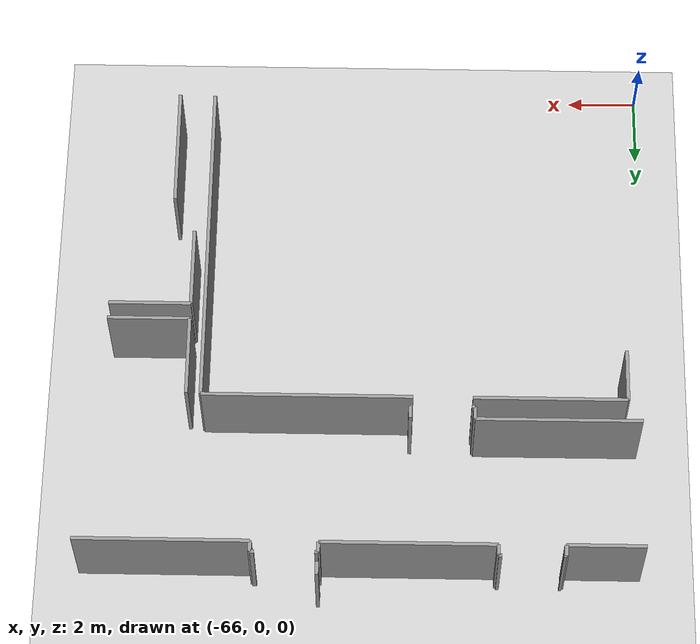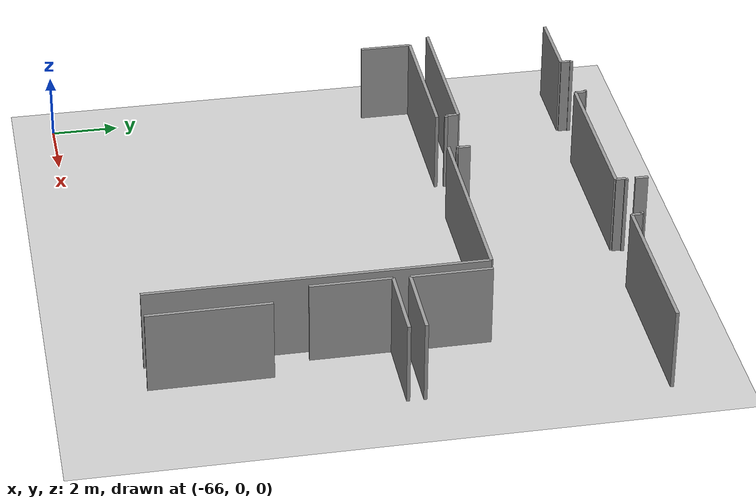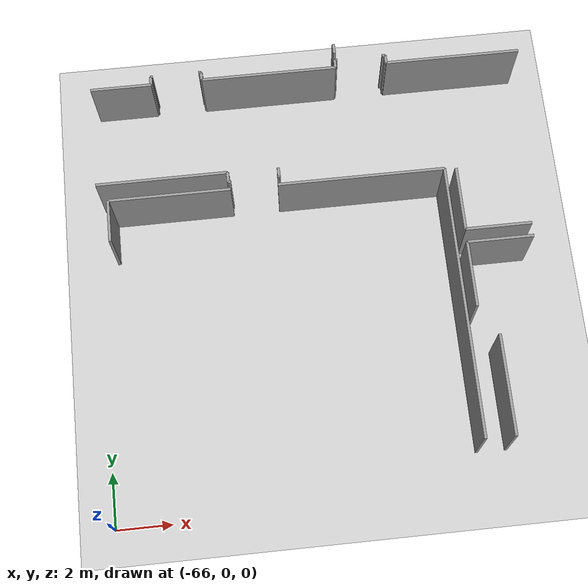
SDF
<sdf version="1.6">
 <world name="default">
  <model name="ground_plane">
   <static>1</static>
   <link name="link">
    <collision name="collision">
     <geometry><plane><normal>0 0 1</normal><size>100 100</size></plane></geometry>
     <surface><friction><ode><mu>100</mu><mu2>50</mu2></ode></friction></surface>
    </collision>
    <visual name="visual">
     <cast_shadows>0</cast_shadows>
     <geometry><plane><normal>0 0 1</normal><size>100 100</size></plane></geometry>
     <material>
      <script><uri>file://media/materials/scripts/gazebo.material</uri><name>Gazebo/Grey</name></script>
     </material>
    </visual>
   </link>
  </model>
  <model name="0510032192_A_40_1_103">
   <static>1</static>
   <link name="Wall_10">
    <collision name="Wall_10_Collision">
     <geometry><box><size>0.379861014064 0.1 2.5</size></box></geometry>
     <pose>0.189930507032 0 1.25 0 0 0</pose>
    </collision>
    <visual name="Wall_10_Visual">
     <pose>0.189930507032 0 1.25 0 0 0</pose>
     <geometry><box><size>0.379861014064 0.1 2.5</size></box></geometry>
     <material>
      <script><uri>file://media/materials/scripts/gazebo.material</uri><name>Gazebo/Grey</name></script>
      <ambient>1 1 1 1</ambient>
     </material>
    </visual>
    <pose>10.8453495611 -10.4052697775 0 0 0 1.57079632679</pose>
   </link>
   <link name="Wall_56">
    <collision name="Wall_56_Collision">
     <geometry><box><size>2.22326680472 0.1 2.5</size></box></geometry>
     <pose>1.11163340236 0 1.25 0 0 0</pose>
    </collision>
    <visual name="Wall_56_Visual">
     <pose>1.11163340236 0 1.25 0 0 0</pose>
     <geometry><box><size>2.22326680472 0.1 2.5</size></box></geometry>
     <material>
      <script><uri>file://media/materials/scripts/gazebo.material</uri><name>Gazebo/Grey</name></script>
      <ambient>1 1 1 1</ambient>
     </material>
    </visual>
    <pose>1.77619961125 -10.9997077992 0 0 0 0.0</pose>
   </link>
   <link name="Wall_57">
    <collision name="Wall_57_Collision">
     <geometry><box><size>0.322056077141 0.1 2.5</size></box></geometry>
     <pose>0.161028038571 0 1.25 0 0 0</pose>
    </collision>
    <visual name="Wall_57_Visual">
     <pose>0.161028038571 0 1.25 0 0 0</pose>
     <geometry><box><size>0.322056077141 0.1 2.5</size></box></geometry>
     <material>
      <script><uri>file://media/materials/scripts/gazebo.material</uri><name>Gazebo/Grey</name></script>
      <ambient>1 1 1 1</ambient>
     </material>
    </visual>
    <pose>3.99946641597 -10.9997077992 0 0 0 1.57079632679</pose>
   </link>
   <link name="Wall_58">
    <collision name="Wall_58_Collision">
     <geometry><box><size>0.0769885533521 0.1 2.5</size></box></geometry>
     <pose>0.038494276676 0 1.25 0 0 0</pose>
    </collision>
    <visual name="Wall_58_Visual">
     <pose>0.038494276676 0 1.25 0 0 0</pose>
     <geometry><box><size>0.0769885533521 0.1 2.5</size></box></geometry>
     <material>
      <script><uri>file://media/materials/scripts/gazebo.material</uri><name>Gazebo/Grey</name></script>
      <ambient>1 1 1 1</ambient>
     </material>
    </visual>
    <pose>3.99946641597 -10.6776517221 0 0 0 0.0</pose>
   </link>
   <link name="Wall_59">
    <collision name="Wall_59_Collision">
     <geometry><box><size>0.0919797238067 0.1 2.5</size></box></geometry>
     <pose>0.0459898619034 0 1.25 0 0 0</pose>
    </collision>
    <visual name="Wall_59_Visual">
     <pose>0.0459898619034 0 1.25 0 0 0</pose>
     <geometry><box><size>0.0919797238067 0.1 2.5</size></box></geometry>
     <material>
      <script><uri>file://media/materials/scripts/gazebo.material</uri><name>Gazebo/Grey</name></script>
      <ambient>1 1 1 1</ambient>
     </material>
    </visual>
    <pose>5.77007609925 -10.6776517221 0 0 0 0.0</pose>
   </link>
   <link name="Wall_60">
    <collision name="Wall_60_Collision">
     <geometry><box><size>0.310241002122 0.1 2.5</size></box></geometry>
     <pose>0.155120501061 0 1.25 0 0 0</pose>
    </collision>
    <visual name="Wall_60_Visual">
     <pose>0.155120501061 0 1.25 0 0 0</pose>
     <geometry><box><size>0.310241002122 0.1 2.5</size></box></geometry>
     <material>
      <script><uri>file://media/materials/scripts/gazebo.material</uri><name>Gazebo/Grey</name></script>
      <ambient>1 1 1 1</ambient>
     </material>
    </visual>
    <pose>5.86205582305 -10.6776517221 0 0 0 -1.57079632679</pose>
   </link>
   <link name="Wall_61">
    <collision name="Wall_61_Collision">
     <geometry><box><size>4.95534409818 0.1 2.5</size></box></geometry>
     <pose>2.47767204909 0 1.25 0 0 0</pose>
    </collision>
    <visual name="Wall_61_Visual">
     <pose>2.47767204909 0 1.25 0 0 0</pose>
     <geometry><box><size>4.95534409818 0.1 2.5</size></box></geometry>
     <material>
      <script><uri>file://media/materials/scripts/gazebo.material</uri><name>Gazebo/Grey</name></script>
      <ambient>1 1 1 1</ambient>
     </material>
    </visual>
    <pose>5.86205582305 -10.9878927242 0 0 0 0.0</pose>
   </link>
   <link name="Wall_62">
    <collision name="Wall_62_Collision">
     <geometry><box><size>0.306429687599 0.1 2.5</size></box></geometry>
     <pose>0.1532148438 0 1.25 0 0 0</pose>
    </collision>
    <visual name="Wall_62_Visual">
     <pose>0.1532148438 0 1.25 0 0 0</pose>
     <geometry><box><size>0.306429687599 0.1 2.5</size></box></geometry>
     <material>
      <script><uri>file://media/materials/scripts/gazebo.material</uri><name>Gazebo/Grey</name></script>
      <ambient>1 1 1 1</ambient>
     </material>
    </visual>
    <pose>10.8173999212 -10.9878927242 0 0 0 1.57079632679</pose>
   </link>
   <link name="Wall_63">
    <collision name="Wall_63_Collision">
     <geometry><box><size>0.0993482652167 0.1 2.5</size></box></geometry>
     <pose>0.0496741326083 0 1.25 0 0 0</pose>
    </collision>
    <visual name="Wall_63_Visual">
     <pose>0.0496741326083 0 1.25 0 0 0</pose>
     <geometry><box><size>0.0993482652167 0.1 2.5</size></box></geometry>
     <material>
      <script><uri>file://media/materials/scripts/gazebo.material</uri><name>Gazebo/Grey</name></script>
      <ambient>1 1 1 1</ambient>
     </material>
    </visual>
    <pose>10.8173999212 -10.6814630366 0 0 0 0.0</pose>
   </link>
   <link name="Wall_64">
    <collision name="Wall_64_Collision">
     <geometry><box><size>0.11688031202 0.1 2.5</size></box></geometry>
     <pose>0.0584401560098 0 1.25 0 0 0</pose>
    </collision>
    <visual name="Wall_64_Visual">
     <pose>0.0584401560098 0 1.25 0 0 0</pose>
     <geometry><box><size>0.11688031202 0.1 2.5</size></box></geometry>
     <material>
      <script><uri>file://media/materials/scripts/gazebo.material</uri><name>Gazebo/Grey</name></script>
      <ambient>1 1 1 1</ambient>
     </material>
    </visual>
    <pose>12.5864850787 -10.6814630366 0 0 0 0.0</pose>
   </link>
   <link name="Wall_65">
    <collision name="Wall_65_Collision">
     <geometry><box><size>0.310622133574 0.1 2.5</size></box></geometry>
     <pose>0.155311066787 0 1.25 0 0 0</pose>
    </collision>
    <visual name="Wall_65_Visual">
     <pose>0.155311066787 0 1.25 0 0 0</pose>
     <geometry><box><size>0.310622133574 0.1 2.5</size></box></geometry>
     <material>
      <script><uri>file://media/materials/scripts/gazebo.material</uri><name>Gazebo/Grey</name></script>
      <ambient>1 1 1 1</ambient>
     </material>
    </visual>
    <pose>12.7033653907 -10.6814630366 0 0 0 -1.57079632679</pose>
   </link>
   <link name="Wall_66">
    <collision name="Wall_66_Collision">
     <geometry><box><size>4.93057055378 0.1 2.5</size></box></geometry>
     <pose>2.46528527689 0 1.25 0 0 0</pose>
    </collision>
    <visual name="Wall_66_Visual">
     <pose>2.46528527689 0 1.25 0 0 0</pose>
     <geometry><box><size>4.93057055378 0.1 2.5</size></box></geometry>
     <material>
      <script><uri>file://media/materials/scripts/gazebo.material</uri><name>Gazebo/Grey</name></script>
      <ambient>1 1 1 1</ambient>
     </material>
    </visual>
    <pose>12.7033653907 -10.9920851702 0 0 0 0.0</pose>
   </link>
   <link name="Wall_92">
    <collision name="Wall_92_Collision">
     <geometry><box><size>0.371094990662 0.1 2.5</size></box></geometry>
     <pose>0.185547495331 0 1.25 0 0 0</pose>
    </collision>
    <visual name="Wall_92_Visual">
     <pose>0.185547495331 0 1.25 0 0 0</pose>
     <geometry><box><size>0.371094990662 0.1 2.5</size></box></geometry>
     <material>
      <script><uri>file://media/materials/scripts/gazebo.material</uri><name>Gazebo/Grey</name></script>
      <ambient>1 1 1 1</ambient>
     </material>
    </visual>
    <pose>8.32721405613 -14.7867569525 0 0 0 -1.57079632679</pose>
   </link>
   <link name="Wall_93">
    <collision name="Wall_93_Collision">
     <geometry><box><size>0.0627596458018 0.1 2.5</size></box></geometry>
     <pose>0.0313798229009 0 1.25 0 0 0</pose>
    </collision>
    <visual name="Wall_93_Visual">
     <pose>0.0313798229009 0 1.25 0 0 0</pose>
     <geometry><box><size>0.0627596458018 0.1 2.5</size></box></geometry>
     <material>
      <script><uri>file://media/materials/scripts/gazebo.material</uri><name>Gazebo/Grey</name></script>
      <ambient>1 1 1 1</ambient>
     </material>
    </visual>
    <pose>8.32721405613 -15.1578519431 0 0 0 3.14159265359</pose>
   </link>
   <link name="Wall_94">
    <collision name="Wall_94_Collision">
     <geometry><box><size>0.0932501619809 0.1 2.5</size></box></geometry>
     <pose>0.0466250809904 0 1.25 0 0 0</pose>
    </collision>
    <visual name="Wall_94_Visual">
     <pose>0.0466250809904 0 1.25 0 0 0</pose>
     <geometry><box><size>0.0932501619809 0.1 2.5</size></box></geometry>
     <material>
      <script><uri>file://media/materials/scripts/gazebo.material</uri><name>Gazebo/Grey</name></script>
      <ambient>1 1 1 1</ambient>
     </material>
    </visual>
    <pose>6.59408229898 -15.1578519431 0 0 0 3.14159265359</pose>
   </link>
   <link name="Wall_95">
    <collision name="Wall_95_Collision">
     <geometry><box><size>0.375922655724 0.1 2.5</size></box></geometry>
     <pose>0.187961327862 0 1.25 0 0 0</pose>
    </collision>
    <visual name="Wall_95_Visual">
     <pose>0.187961327862 0 1.25 0 0 0</pose>
     <geometry><box><size>0.375922655724 0.1 2.5</size></box></geometry>
     <material>
      <script><uri>file://media/materials/scripts/gazebo.material</uri><name>Gazebo/Grey</name></script>
      <ambient>1 1 1 1</ambient>
     </material>
    </visual>
    <pose>6.500832137 -15.1578519431 0 0 0 1.57079632679</pose>
   </link>
   <link name="Wall_96">
    <collision name="Wall_96_Collision">
     <geometry><box><size>4.72463867485 0.1 2.5</size></box></geometry>
     <pose>2.36231933743 0 1.25 0 0 0</pose>
    </collision>
    <visual name="Wall_96_Visual">
     <pose>2.36231933743 0 1.25 0 0 0</pose>
     <geometry><box><size>4.72463867485 0.1 2.5</size></box></geometry>
     <material>
      <script><uri>file://media/materials/scripts/gazebo.material</uri><name>Gazebo/Grey</name></script>
      <ambient>1 1 1 1</ambient>
     </material>
    </visual>
    <pose>6.500832137 -14.7819292874 0 0 0 -3.13997927469</pose>
   </link>
   <link name="Wall_98">
    <collision name="Wall_98_Collision">
     <geometry><box><size>1.53989811086 0.1 2.5</size></box></geometry>
     <pose>0.769949055429 0 1.25 0 0 0</pose>
    </collision>
    <visual name="Wall_98_Visual">
     <pose>0.769949055429 0 1.25 0 0 0</pose>
     <geometry><box><size>1.53989811086 0.1 2.5</size></box></geometry>
     <material>
      <script><uri>file://media/materials/scripts/gazebo.material</uri><name>Gazebo/Grey</name></script>
      <ambient>1 1 1 1</ambient>
     </material>
    </visual>
    <pose>2.18019895062 -16.9772464523 0 0 0 1.57079632679</pose>
   </link>
   <link name="Wall_99">
    <collision name="Wall_99_Collision">
     <geometry><box><size>4.38097899966 0.1 2.5</size></box></geometry>
     <pose>2.19048949983 0 1.25 0 0 0</pose>
    </collision>
    <visual name="Wall_99_Visual">
     <pose>2.19048949983 0 1.25 0 0 0</pose>
     <geometry><box><size>4.38097899966 0.1 2.5</size></box></geometry>
     <material>
      <script><uri>file://media/materials/scripts/gazebo.material</uri><name>Gazebo/Grey</name></script>
      <ambient>1 1 1 1</ambient>
     </material>
    </visual>
    <pose>2.18019895062 -15.4373483414 0 0 0 0.0</pose>
   </link>
   <link name="Wall_100">
    <collision name="Wall_100_Collision">
     <geometry><box><size>6.0039637671 0.1 2.5</size></box></geometry>
     <pose>3.00198188355 0 1.25 0 0 0</pose>
    </collision>
    <visual name="Wall_100_Visual">
     <pose>3.00198188355 0 1.25 0 0 0</pose>
     <geometry><box><size>6.0039637671 0.1 2.5</size></box></geometry>
     <material>
      <script><uri>file://media/materials/scripts/gazebo.material</uri><name>Gazebo/Grey</name></script>
      <ambient>1 1 1 1</ambient>
     </material>
    </visual>
    <pose>8.2518770724 -15.4373483414 0 0 0 0.0</pose>
   </link>
   <link name="Wall_101">
    <collision name="Wall_101_Collision">
     <geometry><box><size>9.85605935487 0.1 2.5</size></box></geometry>
     <pose>4.92802967744 0 1.25 0 0 0</pose>
    </collision>
    <visual name="Wall_101_Visual">
     <pose>4.92802967744 0 1.25 0 0 0</pose>
     <geometry><box><size>9.85605935487 0.1 2.5</size></box></geometry>
     <material>
      <script><uri>file://media/materials/scripts/gazebo.material</uri><name>Gazebo/Grey</name></script>
      <ambient>1 1 1 1</ambient>
     </material>
    </visual>
    <pose>14.2558408395 -15.4373483414 0 0 0 -1.57079632679</pose>
   </link>
   <link name="Wall_121">
    <collision name="Wall_121_Collision">
     <geometry><box><size>2.36720744985 0.1 2.5</size></box></geometry>
     <pose>1.18360372492 0 1.25 0 0 0</pose>
    </collision>
    <visual name="Wall_121_Visual">
     <pose>1.18360372492 0 1.25 0 0 0</pose>
     <geometry><box><size>2.36720744985 0.1 2.5</size></box></geometry>
     <material>
      <script><uri>file://media/materials/scripts/gazebo.material</uri><name>Gazebo/Grey</name></script>
      <ambient>1 1 1 1</ambient>
     </material>
    </visual>
    <pose>14.6735609112 -17.8191658303 0 0 0 0.0</pose>
   </link>
   <link name="Wall_125">
    <collision name="Wall_125_Collision">
     <geometry><box><size>2.35146036215 0.1 2.5</size></box></geometry>
     <pose>1.17573018108 0 1.25 0 0 0</pose>
    </collision>
    <visual name="Wall_125_Visual">
     <pose>1.17573018108 0 1.25 0 0 0</pose>
     <geometry><box><size>2.35146036215 0.1 2.5</size></box></geometry>
     <material>
      <script><uri>file://media/materials/scripts/gazebo.material</uri><name>Gazebo/Grey</name></script>
      <ambient>1 1 1 1</ambient>
     </material>
    </visual>
    <pose>14.668098027 -15.4677118138 0 0 0 -1.56847313685</pose>
   </link>
   <link name="Wall_126">
    <collision name="Wall_126_Collision">
     <geometry><box><size>2.36720744985 0.1 2.5</size></box></geometry>
     <pose>1.18360372492 0 1.25 0 0 0</pose>
    </collision>
    <visual name="Wall_126_Visual">
     <pose>1.18360372492 0 1.25 0 0 0</pose>
     <geometry><box><size>2.36720744985 0.1 2.5</size></box></geometry>
     <material>
      <script><uri>file://media/materials/scripts/gazebo.material</uri><name>Gazebo/Grey</name></script>
      <ambient>1 1 1 1</ambient>
     </material>
    </visual>
    <pose>14.662508099 -20.6697750054 0 0 0 1.57079632679</pose>
   </link>
   <link name="Wall_127">
    <collision name="Wall_127_Collision">
     <geometry><box><size>2.36733449367 0.1 2.5</size></box></geometry>
     <pose>1.18366724683 0 1.25 0 0 0</pose>
    </collision>
    <visual name="Wall_127_Visual">
     <pose>1.18366724683 0 1.25 0 0 0</pose>
     <geometry><box><size>2.36733449367 0.1 2.5</size></box></geometry>
     <material>
      <script><uri>file://media/materials/scripts/gazebo.material</uri><name>Gazebo/Grey</name></script>
      <ambient>1 1 1 1</ambient>
     </material>
    </visual>
    <pose>14.662508099 -18.3025675555 0 0 0 0.0</pose>
   </link>
   <link name="Wall_401">
    <collision name="Wall_401_Collision">
     <geometry><box><size>3.55850720438 0.1 2.5</size></box></geometry>
     <pose>1.77925360219 0 1.25 0 0 0</pose>
    </collision>
    <visual name="Wall_401_Visual">
     <pose>1.77925360219 0 1.25 0 0 0</pose>
     <geometry><box><size>3.55850720438 0.1 2.5</size></box></geometry>
     <material>
      <script><uri>file://media/materials/scripts/gazebo.material</uri><name>Gazebo/Grey</name></script>
      <ambient>1 1 1 1</ambient>
     </material>
    </visual>
    <pose>15.2845146291 -21.7471065771 0 0 0 -1.56844002983</pose>
   </link>
   <pose>-67.5 26.6902360474 0 0 0 0</pose>
  </model>
 </world>
</sdf>
